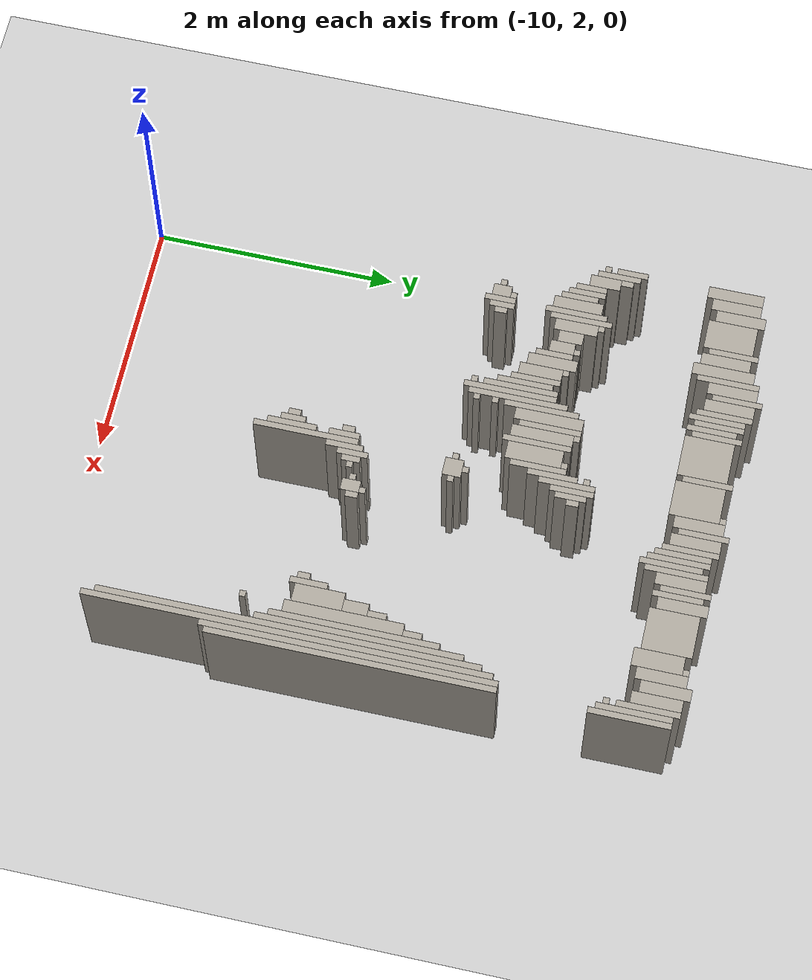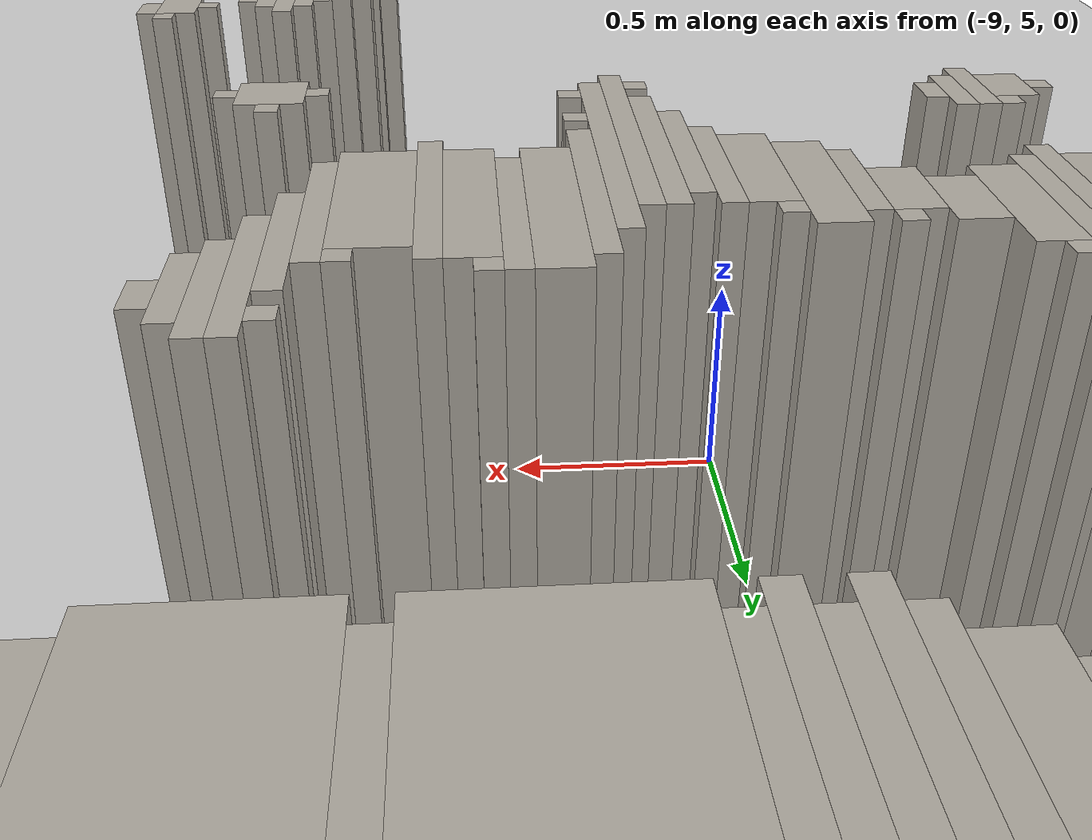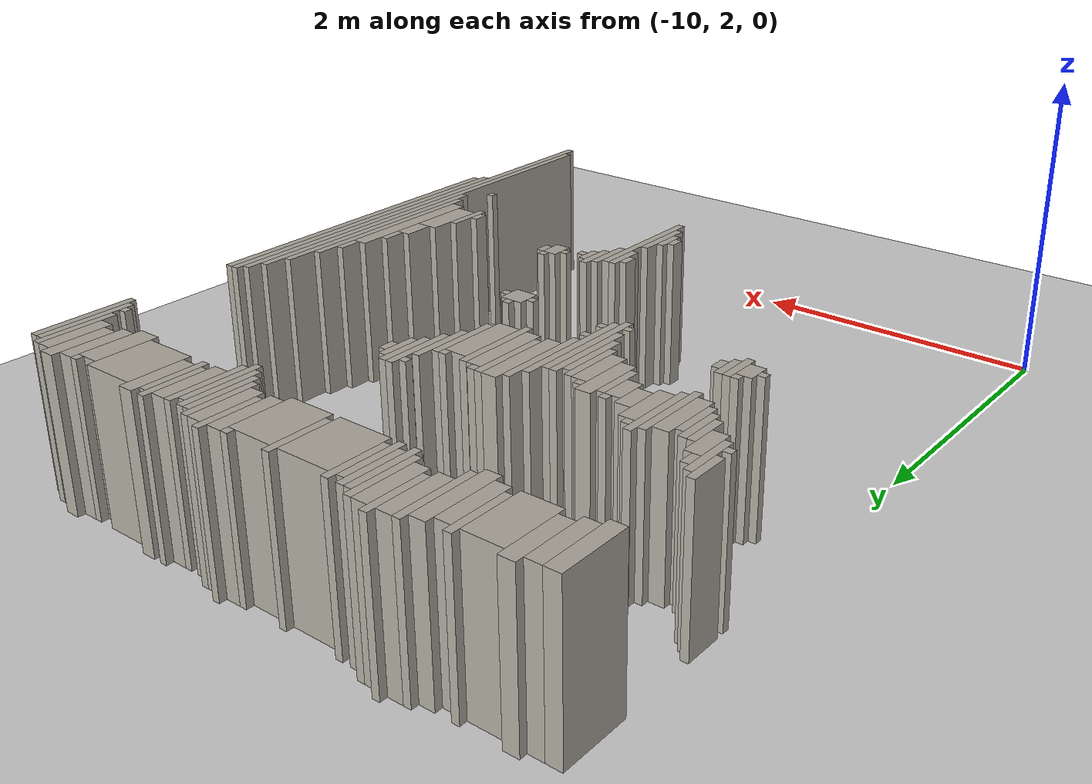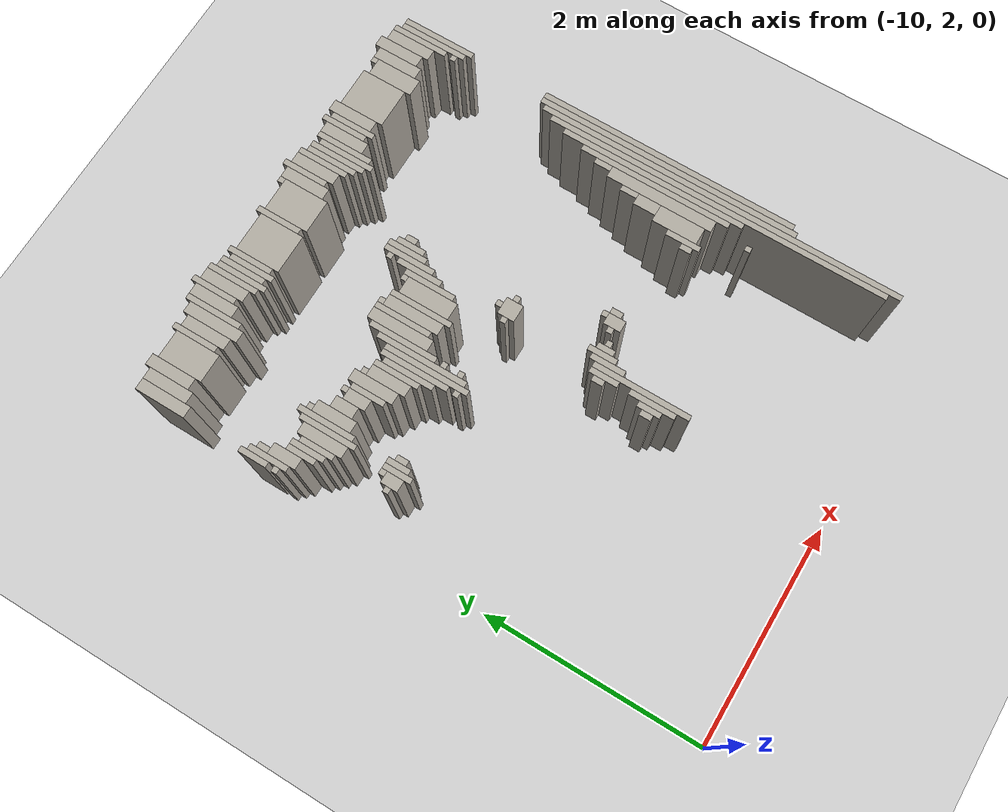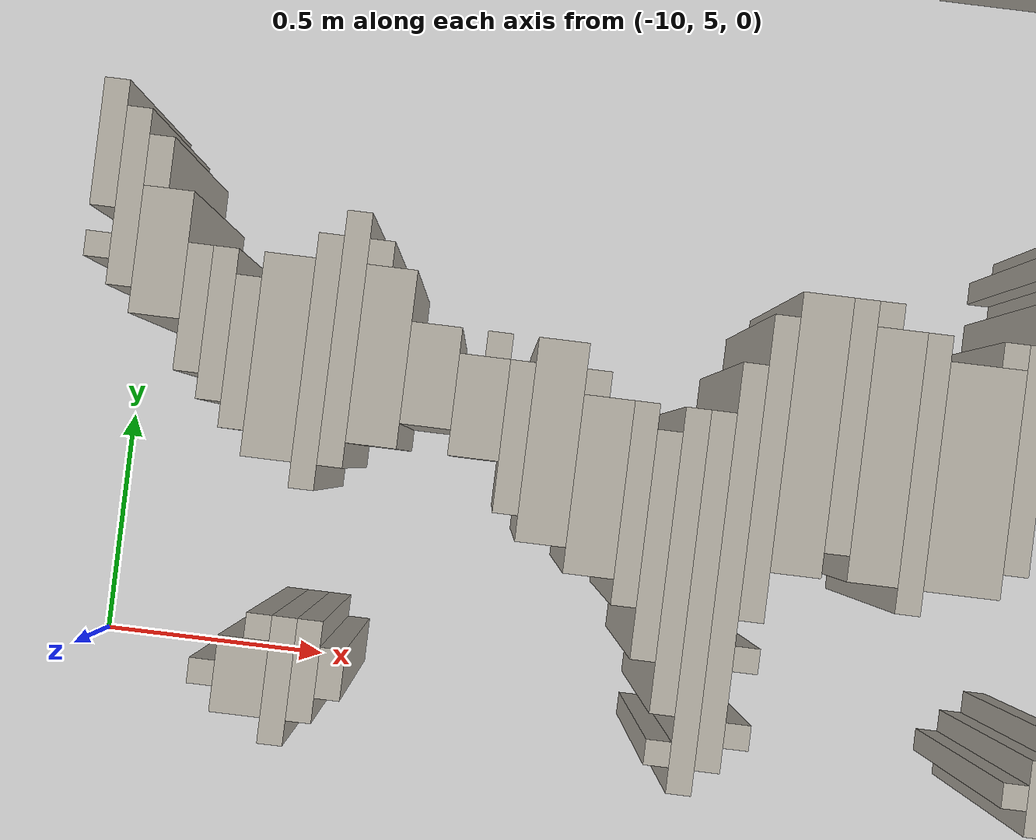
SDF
<sdf version="1.6">
 <world name="fr079_office">
  <include><uri>model://sun</uri></include>
  <include><uri>model://ground_plane</uri></include>
  <model name="fr079_office_walls">
   <static>true</static>
   <link name="w2254">
    <pose>-6.323 4.019 0.500 0 0 0</pose>
    <collision name="c"><geometry><box><size>0.050 3.250 1.000</size></box></geometry></collision>
    <visual name="v">
     <geometry><box><size>0.050 3.250 1.000</size></box></geometry>
     <material><ambient>0.68 0.66 0.62 1</ambient><diffuse>0.68 0.66 0.62 1</diffuse></material>
    </visual>
   </link>
   <link name="w2277">
    <pose>-6.373 4.019 0.500 0 0 0</pose>
    <collision name="c"><geometry><box><size>0.050 3.050 1.000</size></box></geometry></collision>
    <visual name="v">
     <geometry><box><size>0.050 3.050 1.000</size></box></geometry>
     <material><ambient>0.68 0.66 0.62 1</ambient><diffuse>0.68 0.66 0.62 1</diffuse></material>
    </visual>
   </link>
   <link name="w2494">
    <pose>-8.023 3.769 0.500 0 0 0</pose>
    <collision name="c"><geometry><box><size>0.050 0.850 1.000</size></box></geometry></collision>
    <visual name="v">
     <geometry><box><size>0.050 0.850 1.000</size></box></geometry>
     <material><ambient>0.68 0.66 0.62 1</ambient><diffuse>0.68 0.66 0.62 1</diffuse></material>
    </visual>
   </link>
   <link name="w2497">
    <pose>-6.273 4.519 0.500 0 0 0</pose>
    <collision name="c"><geometry><box><size>0.050 2.350 1.000</size></box></geometry></collision>
    <visual name="v">
     <geometry><box><size>0.050 2.350 1.000</size></box></geometry>
     <material><ambient>0.68 0.66 0.62 1</ambient><diffuse>0.68 0.66 0.62 1</diffuse></material>
    </visual>
   </link>
   <link name="w2510">
    <pose>-6.223 4.544 0.500 0 0 0</pose>
    <collision name="c"><geometry><box><size>0.050 2.300 1.000</size></box></geometry></collision>
    <visual name="v">
     <geometry><box><size>0.050 2.300 1.000</size></box></geometry>
     <material><ambient>0.68 0.66 0.62 1</ambient><diffuse>0.68 0.66 0.62 1</diffuse></material>
    </visual>
   </link>
   <link name="w2518">
    <pose>-8.073 3.644 0.500 0 0 0</pose>
    <collision name="c"><geometry><box><size>0.050 0.400 1.000</size></box></geometry></collision>
    <visual name="v">
     <geometry><box><size>0.050 0.400 1.000</size></box></geometry>
     <material><ambient>0.68 0.66 0.62 1</ambient><diffuse>0.68 0.66 0.62 1</diffuse></material>
    </visual>
   </link>
   <link name="w2536">
    <pose>-8.123 3.644 0.500 0 0 0</pose>
    <collision name="c"><geometry><box><size>0.050 0.200 1.000</size></box></geometry></collision>
    <visual name="v">
     <geometry><box><size>0.050 0.200 1.000</size></box></geometry>
     <material><ambient>0.68 0.66 0.62 1</ambient><diffuse>0.68 0.66 0.62 1</diffuse></material>
    </visual>
   </link>
   <link name="w2542">
    <pose>-8.173 3.644 0.500 0 0 0</pose>
    <collision name="c"><geometry><box><size>0.050 0.100 1.000</size></box></geometry></collision>
    <visual name="v">
     <geometry><box><size>0.050 0.100 1.000</size></box></geometry>
     <material><ambient>0.68 0.66 0.62 1</ambient><diffuse>0.68 0.66 0.62 1</diffuse></material>
    </visual>
   </link>
   <link name="w2543">
    <pose>-6.573 3.619 0.500 0 0 0</pose>
    <collision name="c"><geometry><box><size>0.050 0.050 1.000</size></box></geometry></collision>
    <visual name="v">
     <geometry><box><size>0.050 0.050 1.000</size></box></geometry>
     <material><ambient>0.68 0.66 0.62 1</ambient><diffuse>0.68 0.66 0.62 1</diffuse></material>
    </visual>
   </link>
   <link name="w2565">
    <pose>-6.423 4.569 0.500 0 0 0</pose>
    <collision name="c"><geometry><box><size>0.050 1.650 1.000</size></box></geometry></collision>
    <visual name="v">
     <geometry><box><size>0.050 1.650 1.000</size></box></geometry>
     <material><ambient>0.68 0.66 0.62 1</ambient><diffuse>0.68 0.66 0.62 1</diffuse></material>
    </visual>
   </link>
   <link name="w2585">
    <pose>-6.473 4.519 0.500 0 0 0</pose>
    <collision name="c"><geometry><box><size>0.050 1.350 1.000</size></box></geometry></collision>
    <visual name="v">
     <geometry><box><size>0.050 1.350 1.000</size></box></geometry>
     <material><ambient>0.68 0.66 0.62 1</ambient><diffuse>0.68 0.66 0.62 1</diffuse></material>
    </visual>
   </link>
   <link name="w2598">
    <pose>-8.073 4.069 0.500 0 0 0</pose>
    <collision name="c"><geometry><box><size>0.050 0.250 1.000</size></box></geometry></collision>
    <visual name="v">
     <geometry><box><size>0.050 0.250 1.000</size></box></geometry>
     <material><ambient>0.68 0.66 0.62 1</ambient><diffuse>0.68 0.66 0.62 1</diffuse></material>
    </visual>
   </link>
   <link name="w2599">
    <pose>-7.973 4.094 0.500 0 0 0</pose>
    <collision name="c"><geometry><box><size>0.050 0.300 1.000</size></box></geometry></collision>
    <visual name="v">
     <geometry><box><size>0.050 0.300 1.000</size></box></geometry>
     <material><ambient>0.68 0.66 0.62 1</ambient><diffuse>0.68 0.66 0.62 1</diffuse></material>
    </visual>
   </link>
   <link name="w2600">
    <pose>-6.773 4.094 0.500 0 0 0</pose>
    <collision name="c"><geometry><box><size>0.050 0.300 1.000</size></box></geometry></collision>
    <visual name="v">
     <geometry><box><size>0.050 0.300 1.000</size></box></geometry>
     <material><ambient>0.68 0.66 0.62 1</ambient><diffuse>0.68 0.66 0.62 1</diffuse></material>
    </visual>
   </link>
   <link name="w2601">
    <pose>-6.548 4.419 0.500 0 0 0</pose>
    <collision name="c"><geometry><box><size>0.100 0.950 1.000</size></box></geometry></collision>
    <visual name="v">
     <geometry><box><size>0.100 0.950 1.000</size></box></geometry>
     <material><ambient>0.68 0.66 0.62 1</ambient><diffuse>0.68 0.66 0.62 1</diffuse></material>
    </visual>
   </link>
   <link name="w2609">
    <pose>-6.823 4.044 0.500 0 0 0</pose>
    <collision name="c"><geometry><box><size>0.050 0.100 1.000</size></box></geometry></collision>
    <visual name="v">
     <geometry><box><size>0.050 0.100 1.000</size></box></geometry>
     <material><ambient>0.68 0.66 0.62 1</ambient><diffuse>0.68 0.66 0.62 1</diffuse></material>
    </visual>
   </link>
   <link name="w2610">
    <pose>-6.673 4.194 0.500 0 0 0</pose>
    <collision name="c"><geometry><box><size>0.150 0.400 1.000</size></box></geometry></collision>
    <visual name="v">
     <geometry><box><size>0.150 0.400 1.000</size></box></geometry>
     <material><ambient>0.68 0.66 0.62 1</ambient><diffuse>0.68 0.66 0.62 1</diffuse></material>
    </visual>
   </link>
   <link name="w2620">
    <pose>-8.123 4.094 0.500 0 0 0</pose>
    <collision name="c"><geometry><box><size>0.050 0.100 1.000</size></box></geometry></collision>
    <visual name="v">
     <geometry><box><size>0.050 0.100 1.000</size></box></geometry>
     <material><ambient>0.68 0.66 0.62 1</ambient><diffuse>0.68 0.66 0.62 1</diffuse></material>
    </visual>
   </link>
   <link name="w2621">
    <pose>-7.923 4.169 0.500 0 0 0</pose>
    <collision name="c"><geometry><box><size>0.050 0.250 1.000</size></box></geometry></collision>
    <visual name="v">
     <geometry><box><size>0.050 0.250 1.000</size></box></geometry>
     <material><ambient>0.68 0.66 0.62 1</ambient><diffuse>0.68 0.66 0.62 1</diffuse></material>
    </visual>
   </link>
   <link name="w2632">
    <pose>-7.873 4.169 0.500 0 0 0</pose>
    <collision name="c"><geometry><box><size>0.050 0.150 1.000</size></box></geometry></collision>
    <visual name="v">
     <geometry><box><size>0.050 0.150 1.000</size></box></geometry>
     <material><ambient>0.68 0.66 0.62 1</ambient><diffuse>0.68 0.66 0.62 1</diffuse></material>
    </visual>
   </link>
   <link name="w2649">
    <pose>-7.823 4.169 0.500 0 0 0</pose>
    <collision name="c"><geometry><box><size>0.050 0.050 1.000</size></box></geometry></collision>
    <visual name="v">
     <geometry><box><size>0.050 0.050 1.000</size></box></geometry>
     <material><ambient>0.68 0.66 0.62 1</ambient><diffuse>0.68 0.66 0.62 1</diffuse></material>
    </visual>
   </link>
   <link name="w2650">
    <pose>-7.648 4.219 0.500 0 0 0</pose>
    <collision name="c"><geometry><box><size>0.100 0.150 1.000</size></box></geometry></collision>
    <visual name="v">
     <geometry><box><size>0.100 0.150 1.000</size></box></geometry>
     <material><ambient>0.68 0.66 0.62 1</ambient><diffuse>0.68 0.66 0.62 1</diffuse></material>
    </visual>
   </link>
   <link name="w2659">
    <pose>-7.723 4.219 0.500 0 0 0</pose>
    <collision name="c"><geometry><box><size>0.050 0.050 1.000</size></box></geometry></collision>
    <visual name="v">
     <geometry><box><size>0.050 0.050 1.000</size></box></geometry>
     <material><ambient>0.68 0.66 0.62 1</ambient><diffuse>0.68 0.66 0.62 1</diffuse></material>
    </visual>
   </link>
   <link name="w2660">
    <pose>-7.573 4.244 0.500 0 0 0</pose>
    <collision name="c"><geometry><box><size>0.050 0.100 1.000</size></box></geometry></collision>
    <visual name="v">
     <geometry><box><size>0.050 0.100 1.000</size></box></geometry>
     <material><ambient>0.68 0.66 0.62 1</ambient><diffuse>0.68 0.66 0.62 1</diffuse></material>
    </visual>
   </link>
   <link name="w2681">
    <pose>-7.623 4.319 0.500 0 0 0</pose>
    <collision name="c"><geometry><box><size>0.050 0.050 1.000</size></box></geometry></collision>
    <visual name="v">
     <geometry><box><size>0.050 0.050 1.000</size></box></geometry>
     <material><ambient>0.68 0.66 0.62 1</ambient><diffuse>0.68 0.66 0.62 1</diffuse></material>
    </visual>
   </link>
   <link name="w2696">
    <pose>-6.648 4.494 0.500 0 0 0</pose>
    <collision name="c"><geometry><box><size>0.100 0.200 1.000</size></box></geometry></collision>
    <visual name="v">
     <geometry><box><size>0.100 0.200 1.000</size></box></geometry>
     <material><ambient>0.68 0.66 0.62 1</ambient><diffuse>0.68 0.66 0.62 1</diffuse></material>
    </visual>
   </link>
   <link name="w2727">
    <pose>-6.623 4.669 0.500 0 0 0</pose>
    <collision name="c"><geometry><box><size>0.050 0.150 1.000</size></box></geometry></collision>
    <visual name="v">
     <geometry><box><size>0.050 0.150 1.000</size></box></geometry>
     <material><ambient>0.68 0.66 0.62 1</ambient><diffuse>0.68 0.66 0.62 1</diffuse></material>
    </visual>
   </link>
   <link name="w2776">
    <pose>-9.523 5.019 0.500 0 0 0</pose>
    <collision name="c"><geometry><box><size>0.050 0.250 1.000</size></box></geometry></collision>
    <visual name="v">
     <geometry><box><size>0.050 0.250 1.000</size></box></geometry>
     <material><ambient>0.68 0.66 0.62 1</ambient><diffuse>0.68 0.66 0.62 1</diffuse></material>
    </visual>
   </link>
   <link name="w2777">
    <pose>-8.723 5.269 0.500 0 0 0</pose>
    <collision name="c"><geometry><box><size>0.050 0.750 1.000</size></box></geometry></collision>
    <visual name="v">
     <geometry><box><size>0.050 0.750 1.000</size></box></geometry>
     <material><ambient>0.68 0.66 0.62 1</ambient><diffuse>0.68 0.66 0.62 1</diffuse></material>
    </visual>
   </link>
   <link name="w2778">
    <pose>-7.973 4.969 0.500 0 0 0</pose>
    <collision name="c"><geometry><box><size>0.150 0.150 1.000</size></box></geometry></collision>
    <visual name="v">
     <geometry><box><size>0.150 0.150 1.000</size></box></geometry>
     <material><ambient>0.68 0.66 0.62 1</ambient><diffuse>0.68 0.66 0.62 1</diffuse></material>
    </visual>
   </link>
   <link name="w2779">
    <pose>-6.523 4.969 0.500 0 0 0</pose>
    <collision name="c"><geometry><box><size>0.050 0.150 1.000</size></box></geometry></collision>
    <visual name="v">
     <geometry><box><size>0.050 0.150 1.000</size></box></geometry>
     <material><ambient>0.68 0.66 0.62 1</ambient><diffuse>0.68 0.66 0.62 1</diffuse></material>
    </visual>
   </link>
   <link name="w2791">
    <pose>-9.598 5.019 0.500 0 0 0</pose>
    <collision name="c"><geometry><box><size>0.100 0.150 1.000</size></box></geometry></collision>
    <visual name="v">
     <geometry><box><size>0.100 0.150 1.000</size></box></geometry>
     <material><ambient>0.68 0.66 0.62 1</ambient><diffuse>0.68 0.66 0.62 1</diffuse></material>
    </visual>
   </link>
   <link name="w2792">
    <pose>-9.473 5.044 0.500 0 0 0</pose>
    <collision name="c"><geometry><box><size>0.050 0.200 1.000</size></box></geometry></collision>
    <visual name="v">
     <geometry><box><size>0.050 0.200 1.000</size></box></geometry>
     <material><ambient>0.68 0.66 0.62 1</ambient><diffuse>0.68 0.66 0.62 1</diffuse></material>
    </visual>
   </link>
   <link name="w2793">
    <pose>-8.773 4.969 0.500 0 0 0</pose>
    <collision name="c"><geometry><box><size>0.050 0.050 1.000</size></box></geometry></collision>
    <visual name="v">
     <geometry><box><size>0.050 0.050 1.000</size></box></geometry>
     <material><ambient>0.68 0.66 0.62 1</ambient><diffuse>0.68 0.66 0.62 1</diffuse></material>
    </visual>
   </link>
   <link name="w2794">
    <pose>-8.673 5.344 0.500 0 0 0</pose>
    <collision name="c"><geometry><box><size>0.050 0.800 1.000</size></box></geometry></collision>
    <visual name="v">
     <geometry><box><size>0.050 0.800 1.000</size></box></geometry>
     <material><ambient>0.68 0.66 0.62 1</ambient><diffuse>0.68 0.66 0.62 1</diffuse></material>
    </visual>
   </link>
   <link name="w2795">
    <pose>-8.073 4.969 0.500 0 0 0</pose>
    <collision name="c"><geometry><box><size>0.050 0.050 1.000</size></box></geometry></collision>
    <visual name="v">
     <geometry><box><size>0.050 0.050 1.000</size></box></geometry>
     <material><ambient>0.68 0.66 0.62 1</ambient><diffuse>0.68 0.66 0.62 1</diffuse></material>
    </visual>
   </link>
   <link name="w2796">
    <pose>-7.873 4.969 0.500 0 0 0</pose>
    <collision name="c"><geometry><box><size>0.050 0.050 1.000</size></box></geometry></collision>
    <visual name="v">
     <geometry><box><size>0.050 0.050 1.000</size></box></geometry>
     <material><ambient>0.68 0.66 0.62 1</ambient><diffuse>0.68 0.66 0.62 1</diffuse></material>
    </visual>
   </link>
   <link name="w2803">
    <pose>-9.673 5.019 0.500 0 0 0</pose>
    <collision name="c"><geometry><box><size>0.050 0.050 1.000</size></box></geometry></collision>
    <visual name="v">
     <geometry><box><size>0.050 0.050 1.000</size></box></geometry>
     <material><ambient>0.68 0.66 0.62 1</ambient><diffuse>0.68 0.66 0.62 1</diffuse></material>
    </visual>
   </link>
   <link name="w2804">
    <pose>-9.423 5.044 0.500 0 0 0</pose>
    <collision name="c"><geometry><box><size>0.050 0.100 1.000</size></box></geometry></collision>
    <visual name="v">
     <geometry><box><size>0.050 0.100 1.000</size></box></geometry>
     <material><ambient>0.68 0.66 0.62 1</ambient><diffuse>0.68 0.66 0.62 1</diffuse></material>
    </visual>
   </link>
   <link name="w2805">
    <pose>-8.623 5.019 0.500 0 0 0</pose>
    <collision name="c"><geometry><box><size>0.050 0.050 1.000</size></box></geometry></collision>
    <visual name="v">
     <geometry><box><size>0.050 0.050 1.000</size></box></geometry>
     <material><ambient>0.68 0.66 0.62 1</ambient><diffuse>0.68 0.66 0.62 1</diffuse></material>
    </visual>
   </link>
   <link name="w2818">
    <pose>-8.773 5.344 0.500 0 0 0</pose>
    <collision name="c"><geometry><box><size>0.050 0.600 1.000</size></box></geometry></collision>
    <visual name="v">
     <geometry><box><size>0.050 0.600 1.000</size></box></geometry>
     <material><ambient>0.68 0.66 0.62 1</ambient><diffuse>0.68 0.66 0.62 1</diffuse></material>
    </visual>
   </link>
   <link name="w2819">
    <pose>-7.973 5.069 0.500 0 0 0</pose>
    <collision name="c"><geometry><box><size>0.050 0.050 1.000</size></box></geometry></collision>
    <visual name="v">
     <geometry><box><size>0.050 0.050 1.000</size></box></geometry>
     <material><ambient>0.68 0.66 0.62 1</ambient><diffuse>0.68 0.66 0.62 1</diffuse></material>
    </visual>
   </link>
   <link name="w2825">
    <pose>-9.573 5.119 0.500 0 0 0</pose>
    <collision name="c"><geometry><box><size>0.050 0.050 1.000</size></box></geometry></collision>
    <visual name="v">
     <geometry><box><size>0.050 0.050 1.000</size></box></geometry>
     <material><ambient>0.68 0.66 0.62 1</ambient><diffuse>0.68 0.66 0.62 1</diffuse></material>
    </visual>
   </link>
   <link name="w2834">
    <pose>-8.823 5.369 0.500 0 0 0</pose>
    <collision name="c"><geometry><box><size>0.050 0.450 1.000</size></box></geometry></collision>
    <visual name="v">
     <geometry><box><size>0.050 0.450 1.000</size></box></geometry>
     <material><ambient>0.68 0.66 0.62 1</ambient><diffuse>0.68 0.66 0.62 1</diffuse></material>
    </visual>
   </link>
   <link name="w2835">
    <pose>-8.623 5.169 0.500 0 0 0</pose>
    <collision name="c"><geometry><box><size>0.050 0.050 1.000</size></box></geometry></collision>
    <visual name="v">
     <geometry><box><size>0.050 0.050 1.000</size></box></geometry>
     <material><ambient>0.68 0.66 0.62 1</ambient><diffuse>0.68 0.66 0.62 1</diffuse></material>
    </visual>
   </link>
   <link name="w2854">
    <pose>-8.873 5.444 0.500 0 0 0</pose>
    <collision name="c"><geometry><box><size>0.050 0.400 1.000</size></box></geometry></collision>
    <visual name="v">
     <geometry><box><size>0.050 0.400 1.000</size></box></geometry>
     <material><ambient>0.68 0.66 0.62 1</ambient><diffuse>0.68 0.66 0.62 1</diffuse></material>
    </visual>
   </link>
   <link name="w2855">
    <pose>-8.623 5.544 0.500 0 0 0</pose>
    <collision name="c"><geometry><box><size>0.050 0.600 1.000</size></box></geometry></collision>
    <visual name="v">
     <geometry><box><size>0.050 0.600 1.000</size></box></geometry>
     <material><ambient>0.68 0.66 0.62 1</ambient><diffuse>0.68 0.66 0.62 1</diffuse></material>
    </visual>
   </link>
   <link name="w2867">
    <pose>-8.948 5.469 0.500 0 0 0</pose>
    <collision name="c"><geometry><box><size>0.100 0.350 1.000</size></box></geometry></collision>
    <visual name="v">
     <geometry><box><size>0.100 0.350 1.000</size></box></geometry>
     <material><ambient>0.68 0.66 0.62 1</ambient><diffuse>0.68 0.66 0.62 1</diffuse></material>
    </visual>
   </link>
   <link name="w2868">
    <pose>-8.323 5.569 0.500 0 0 0</pose>
    <collision name="c"><geometry><box><size>0.050 0.550 1.000</size></box></geometry></collision>
    <visual name="v">
     <geometry><box><size>0.050 0.550 1.000</size></box></geometry>
     <material><ambient>0.68 0.66 0.62 1</ambient><diffuse>0.68 0.66 0.62 1</diffuse></material>
    </visual>
   </link>
   <link name="w2881">
    <pose>-9.048 5.544 0.500 0 0 0</pose>
    <collision name="c"><geometry><box><size>0.100 0.400 1.000</size></box></geometry></collision>
    <visual name="v">
     <geometry><box><size>0.100 0.400 1.000</size></box></geometry>
     <material><ambient>0.68 0.66 0.62 1</ambient><diffuse>0.68 0.66 0.62 1</diffuse></material>
    </visual>
   </link>
   <link name="w2882">
    <pose>-8.548 5.619 0.500 0 0 0</pose>
    <collision name="c"><geometry><box><size>0.100 0.550 1.000</size></box></geometry></collision>
    <visual name="v">
     <geometry><box><size>0.100 0.550 1.000</size></box></geometry>
     <material><ambient>0.68 0.66 0.62 1</ambient><diffuse>0.68 0.66 0.62 1</diffuse></material>
    </visual>
   </link>
   <link name="w2883">
    <pose>-8.398 5.594 0.500 0 0 0</pose>
    <collision name="c"><geometry><box><size>0.100 0.500 1.000</size></box></geometry></collision>
    <visual name="v">
     <geometry><box><size>0.100 0.500 1.000</size></box></geometry>
     <material><ambient>0.68 0.66 0.62 1</ambient><diffuse>0.68 0.66 0.62 1</diffuse></material>
    </visual>
   </link>
   <link name="w2884">
    <pose>-8.223 5.569 0.500 0 0 0</pose>
    <collision name="c"><geometry><box><size>0.150 0.450 1.000</size></box></geometry></collision>
    <visual name="v">
     <geometry><box><size>0.150 0.450 1.000</size></box></geometry>
     <material><ambient>0.68 0.66 0.62 1</ambient><diffuse>0.68 0.66 0.62 1</diffuse></material>
    </visual>
   </link>
   <link name="w2895">
    <pose>-9.523 5.644 0.500 0 0 0</pose>
    <collision name="c"><geometry><box><size>0.050 0.500 1.000</size></box></geometry></collision>
    <visual name="v">
     <geometry><box><size>0.050 0.500 1.000</size></box></geometry>
     <material><ambient>0.68 0.66 0.62 1</ambient><diffuse>0.68 0.66 0.62 1</diffuse></material>
    </visual>
   </link>
   <link name="w2896">
    <pose>-9.123 5.544 0.500 0 0 0</pose>
    <collision name="c"><geometry><box><size>0.050 0.300 1.000</size></box></geometry></collision>
    <visual name="v">
     <geometry><box><size>0.050 0.300 1.000</size></box></geometry>
     <material><ambient>0.68 0.66 0.62 1</ambient><diffuse>0.68 0.66 0.62 1</diffuse></material>
    </visual>
   </link>
   <link name="w2897">
    <pose>-8.473 5.644 0.500 0 0 0</pose>
    <collision name="c"><geometry><box><size>0.050 0.500 1.000</size></box></geometry></collision>
    <visual name="v">
     <geometry><box><size>0.050 0.500 1.000</size></box></geometry>
     <material><ambient>0.68 0.66 0.62 1</ambient><diffuse>0.68 0.66 0.62 1</diffuse></material>
    </visual>
   </link>
   <link name="w2898">
    <pose>-8.123 5.619 0.500 0 0 0</pose>
    <collision name="c"><geometry><box><size>0.050 0.450 1.000</size></box></geometry></collision>
    <visual name="v">
     <geometry><box><size>0.050 0.450 1.000</size></box></geometry>
     <material><ambient>0.68 0.66 0.62 1</ambient><diffuse>0.68 0.66 0.62 1</diffuse></material>
    </visual>
   </link>
   <link name="w2904">
    <pose>-9.598 5.644 0.500 0 0 0</pose>
    <collision name="c"><geometry><box><size>0.100 0.400 1.000</size></box></geometry></collision>
    <visual name="v">
     <geometry><box><size>0.100 0.400 1.000</size></box></geometry>
     <material><ambient>0.68 0.66 0.62 1</ambient><diffuse>0.68 0.66 0.62 1</diffuse></material>
    </visual>
   </link>
   <link name="w2905">
    <pose>-9.473 5.694 0.500 0 0 0</pose>
    <collision name="c"><geometry><box><size>0.050 0.500 1.000</size></box></geometry></collision>
    <visual name="v">
     <geometry><box><size>0.050 0.500 1.000</size></box></geometry>
     <material><ambient>0.68 0.66 0.62 1</ambient><diffuse>0.68 0.66 0.62 1</diffuse></material>
    </visual>
   </link>
   <link name="w2916">
    <pose>-9.673 5.644 0.500 0 0 0</pose>
    <collision name="c"><geometry><box><size>0.050 0.300 1.000</size></box></geometry></collision>
    <visual name="v">
     <geometry><box><size>0.050 0.300 1.000</size></box></geometry>
     <material><ambient>0.68 0.66 0.62 1</ambient><diffuse>0.68 0.66 0.62 1</diffuse></material>
    </visual>
   </link>
   <link name="w2917">
    <pose>-9.398 5.669 0.500 0 0 0</pose>
    <collision name="c"><geometry><box><size>0.100 0.350 1.000</size></box></geometry></collision>
    <visual name="v">
     <geometry><box><size>0.100 0.350 1.000</size></box></geometry>
     <material><ambient>0.68 0.66 0.62 1</ambient><diffuse>0.68 0.66 0.62 1</diffuse></material>
    </visual>
   </link>
   <link name="w2918">
    <pose>-9.198 5.594 0.500 0 0 0</pose>
    <collision name="c"><geometry><box><size>0.100 0.200 1.000</size></box></geometry></collision>
    <visual name="v">
     <geometry><box><size>0.100 0.200 1.000</size></box></geometry>
     <material><ambient>0.68 0.66 0.62 1</ambient><diffuse>0.68 0.66 0.62 1</diffuse></material>
    </visual>
   </link>
   <link name="w2929">
    <pose>-9.723 5.694 0.500 0 0 0</pose>
    <collision name="c"><geometry><box><size>0.050 0.300 1.000</size></box></geometry></collision>
    <visual name="v">
     <geometry><box><size>0.050 0.300 1.000</size></box></geometry>
     <material><ambient>0.68 0.66 0.62 1</ambient><diffuse>0.68 0.66 0.62 1</diffuse></material>
    </visual>
   </link>
   <link name="w2930">
    <pose>-9.298 5.644 0.500 0 0 0</pose>
    <collision name="c"><geometry><box><size>0.100 0.200 1.000</size></box></geometry></collision>
    <visual name="v">
     <geometry><box><size>0.100 0.200 1.000</size></box></geometry>
     <material><ambient>0.68 0.66 0.62 1</ambient><diffuse>0.68 0.66 0.62 1</diffuse></material>
    </visual>
   </link>
   <link name="w2931">
    <pose>-8.073 5.744 0.500 0 0 0</pose>
    <collision name="c"><geometry><box><size>0.050 0.400 1.000</size></box></geometry></collision>
    <visual name="v">
     <geometry><box><size>0.050 0.400 1.000</size></box></geometry>
     <material><ambient>0.68 0.66 0.62 1</ambient><diffuse>0.68 0.66 0.62 1</diffuse></material>
    </visual>
   </link>
   <link name="w2941">
    <pose>-9.773 5.719 0.500 0 0 0</pose>
    <collision name="c"><geometry><box><size>0.050 0.250 1.000</size></box></geometry></collision>
    <visual name="v">
     <geometry><box><size>0.050 0.250 1.000</size></box></geometry>
     <material><ambient>0.68 0.66 0.62 1</ambient><diffuse>0.68 0.66 0.62 1</diffuse></material>
    </visual>
   </link>
   <link name="w2958">
    <pose>-8.973 5.669 0.500 0 0 0</pose>
    <collision name="c"><geometry><box><size>0.050 0.050 1.000</size></box></geometry></collision>
    <visual name="v">
     <geometry><box><size>0.050 0.050 1.000</size></box></geometry>
     <material><ambient>0.68 0.66 0.62 1</ambient><diffuse>0.68 0.66 0.62 1</diffuse></material>
    </visual>
   </link>
   <link name="w2959">
    <pose>-8.023 5.869 0.500 0 0 0</pose>
    <collision name="c"><geometry><box><size>0.050 0.450 1.000</size></box></geometry></collision>
    <visual name="v">
     <geometry><box><size>0.050 0.450 1.000</size></box></geometry>
     <material><ambient>0.68 0.66 0.62 1</ambient><diffuse>0.68 0.66 0.62 1</diffuse></material>
    </visual>
   </link>
   <link name="w2971">
    <pose>-9.848 5.819 0.500 0 0 0</pose>
    <collision name="c"><geometry><box><size>0.100 0.250 1.000</size></box></geometry></collision>
    <visual name="v">
     <geometry><box><size>0.100 0.250 1.000</size></box></geometry>
     <material><ambient>0.68 0.66 0.62 1</ambient><diffuse>0.68 0.66 0.62 1</diffuse></material>
    </visual>
   </link>
   <link name="w2972">
    <pose>-9.173 5.719 0.500 0 0 0</pose>
    <collision name="c"><geometry><box><size>0.050 0.050 1.000</size></box></geometry></collision>
    <visual name="v">
     <geometry><box><size>0.050 0.050 1.000</size></box></geometry>
     <material><ambient>0.68 0.66 0.62 1</ambient><diffuse>0.68 0.66 0.62 1</diffuse></material>
    </visual>
   </link>
   <link name="w2978">
    <pose>-9.923 5.919 0.500 0 0 0</pose>
    <collision name="c"><geometry><box><size>0.050 0.350 1.000</size></box></geometry></collision>
    <visual name="v">
     <geometry><box><size>0.050 0.350 1.000</size></box></geometry>
     <material><ambient>0.68 0.66 0.62 1</ambient><diffuse>0.68 0.66 0.62 1</diffuse></material>
    </visual>
   </link>
   <link name="w2979">
    <pose>-7.973 5.919 0.500 0 0 0</pose>
    <collision name="c"><geometry><box><size>0.050 0.350 1.000</size></box></geometry></collision>
    <visual name="v">
     <geometry><box><size>0.050 0.350 1.000</size></box></geometry>
     <material><ambient>0.68 0.66 0.62 1</ambient><diffuse>0.68 0.66 0.62 1</diffuse></material>
    </visual>
   </link>
   <link name="w2988">
    <pose>-9.973 5.819 0.500 0 0 0</pose>
    <collision name="c"><geometry><box><size>0.050 0.050 1.000</size></box></geometry></collision>
    <visual name="v">
     <geometry><box><size>0.050 0.050 1.000</size></box></geometry>
     <material><ambient>0.68 0.66 0.62 1</ambient><diffuse>0.68 0.66 0.62 1</diffuse></material>
    </visual>
   </link>
   <link name="w2989">
    <pose>-8.173 5.819 0.500 0 0 0</pose>
    <collision name="c"><geometry><box><size>0.050 0.050 1.000</size></box></geometry></collision>
    <visual name="v">
     <geometry><box><size>0.050 0.050 1.000</size></box></geometry>
     <material><ambient>0.68 0.66 0.62 1</ambient><diffuse>0.68 0.66 0.62 1</diffuse></material>
    </visual>
   </link>
   <link name="w2990">
    <pose>-7.923 5.919 0.500 0 0 0</pose>
    <collision name="c"><geometry><box><size>0.050 0.250 1.000</size></box></geometry></collision>
    <visual name="v">
     <geometry><box><size>0.050 0.250 1.000</size></box></geometry>
     <material><ambient>0.68 0.66 0.62 1</ambient><diffuse>0.68 0.66 0.62 1</diffuse></material>
    </visual>
   </link>
   <link name="w2997">
    <pose>-9.423 5.869 0.500 0 0 0</pose>
    <collision name="c"><geometry><box><size>0.050 0.050 1.000</size></box></geometry></collision>
    <visual name="v">
     <geometry><box><size>0.050 0.050 1.000</size></box></geometry>
     <material><ambient>0.68 0.66 0.62 1</ambient><diffuse>0.68 0.66 0.62 1</diffuse></material>
    </visual>
   </link>
   <link name="w2998">
    <pose>-8.423 5.869 0.500 0 0 0</pose>
    <collision name="c"><geometry><box><size>0.050 0.050 1.000</size></box></geometry></collision>
    <visual name="v">
     <geometry><box><size>0.050 0.050 1.000</size></box></geometry>
     <material><ambient>0.68 0.66 0.62 1</ambient><diffuse>0.68 0.66 0.62 1</diffuse></material>
    </visual>
   </link>
   <link name="w3004">
    <pose>-9.973 6.019 0.500 0 0 0</pose>
    <collision name="c"><geometry><box><size>0.050 0.250 1.000</size></box></geometry></collision>
    <visual name="v">
     <geometry><box><size>0.050 0.250 1.000</size></box></geometry>
     <material><ambient>0.68 0.66 0.62 1</ambient><diffuse>0.68 0.66 0.62 1</diffuse></material>
    </visual>
   </link>
   <link name="w3005">
    <pose>-7.873 5.944 0.500 0 0 0</pose>
    <collision name="c"><geometry><box><size>0.050 0.100 1.000</size></box></geometry></collision>
    <visual name="v">
     <geometry><box><size>0.050 0.100 1.000</size></box></geometry>
     <material><ambient>0.68 0.66 0.62 1</ambient><diffuse>0.68 0.66 0.62 1</diffuse></material>
    </visual>
   </link>
   <link name="w3015">
    <pose>-9.873 5.994 0.500 0 0 0</pose>
    <collision name="c"><geometry><box><size>0.050 0.100 1.000</size></box></geometry></collision>
    <visual name="v">
     <geometry><box><size>0.050 0.100 1.000</size></box></geometry>
     <material><ambient>0.68 0.66 0.62 1</ambient><diffuse>0.68 0.66 0.62 1</diffuse></material>
    </visual>
   </link>
   <link name="w3022">
    <pose>-8.073 6.019 0.500 0 0 0</pose>
    <collision name="c"><geometry><box><size>0.050 0.050 1.000</size></box></geometry></collision>
    <visual name="v">
     <geometry><box><size>0.050 0.050 1.000</size></box></geometry>
     <material><ambient>0.68 0.66 0.62 1</ambient><diffuse>0.68 0.66 0.62 1</diffuse></material>
    </visual>
   </link>
   <link name="w3109">
    <pose>-6.223 6.719 0.500 0 0 0</pose>
    <collision name="c"><geometry><box><size>0.050 0.650 1.000</size></box></geometry></collision>
    <visual name="v">
     <geometry><box><size>0.050 0.650 1.000</size></box></geometry>
     <material><ambient>0.68 0.66 0.62 1</ambient><diffuse>0.68 0.66 0.62 1</diffuse></material>
    </visual>
   </link>
   <link name="w3121">
    <pose>-6.273 6.744 0.500 0 0 0</pose>
    <collision name="c"><geometry><box><size>0.050 0.600 1.000</size></box></geometry></collision>
    <visual name="v">
     <geometry><box><size>0.050 0.600 1.000</size></box></geometry>
     <material><ambient>0.68 0.66 0.62 1</ambient><diffuse>0.68 0.66 0.62 1</diffuse></material>
    </visual>
   </link>
   <link name="w3140">
    <pose>-6.323 6.519 0.500 0 0 0</pose>
    <collision name="c"><geometry><box><size>0.050 0.050 1.000</size></box></geometry></collision>
    <visual name="v">
     <geometry><box><size>0.050 0.050 1.000</size></box></geometry>
     <material><ambient>0.68 0.66 0.62 1</ambient><diffuse>0.68 0.66 0.62 1</diffuse></material>
    </visual>
   </link>
   <link name="w3155">
    <pose>-7.523 6.794 0.500 0 0 0</pose>
    <collision name="c"><geometry><box><size>0.050 0.500 1.000</size></box></geometry></collision>
    <visual name="v">
     <geometry><box><size>0.050 0.500 1.000</size></box></geometry>
     <material><ambient>0.68 0.66 0.62 1</ambient><diffuse>0.68 0.66 0.62 1</diffuse></material>
    </visual>
   </link>
   <link name="w3176">
    <pose>-7.573 6.844 0.500 0 0 0</pose>
    <collision name="c"><geometry><box><size>0.050 0.500 1.000</size></box></geometry></collision>
    <visual name="v">
     <geometry><box><size>0.050 0.500 1.000</size></box></geometry>
     <material><ambient>0.68 0.66 0.62 1</ambient><diffuse>0.68 0.66 0.62 1</diffuse></material>
    </visual>
   </link>
   <link name="w3177">
    <pose>-7.473 6.844 0.500 0 0 0</pose>
    <collision name="c"><geometry><box><size>0.050 0.500 1.000</size></box></geometry></collision>
    <visual name="v">
     <geometry><box><size>0.050 0.500 1.000</size></box></geometry>
     <material><ambient>0.68 0.66 0.62 1</ambient><diffuse>0.68 0.66 0.62 1</diffuse></material>
    </visual>
   </link>
   <link name="w3178">
    <pose>-6.323 6.844 0.500 0 0 0</pose>
    <collision name="c"><geometry><box><size>0.050 0.500 1.000</size></box></geometry></collision>
    <visual name="v">
     <geometry><box><size>0.050 0.500 1.000</size></box></geometry>
     <material><ambient>0.68 0.66 0.62 1</ambient><diffuse>0.68 0.66 0.62 1</diffuse></material>
    </visual>
   </link>
   <link name="w3202">
    <pose>-9.948 6.869 0.500 0 0 0</pose>
    <collision name="c"><geometry><box><size>0.100 0.450 1.000</size></box></geometry></collision>
    <visual name="v">
     <geometry><box><size>0.100 0.450 1.000</size></box></geometry>
     <material><ambient>0.68 0.66 0.62 1</ambient><diffuse>0.68 0.66 0.62 1</diffuse></material>
    </visual>
   </link>
   <link name="w3203">
    <pose>-9.248 6.894 0.500 0 0 0</pose>
    <collision name="c"><geometry><box><size>0.100 0.500 1.000</size></box></geometry></collision>
    <visual name="v">
     <geometry><box><size>0.100 0.500 1.000</size></box></geometry>
     <material><ambient>0.68 0.66 0.62 1</ambient><diffuse>0.68 0.66 0.62 1</diffuse></material>
    </visual>
   </link>
   <link name="w3204">
    <pose>-7.623 6.869 0.500 0 0 0</pose>
    <collision name="c"><geometry><box><size>0.050 0.450 1.000</size></box></geometry></collision>
    <visual name="v">
     <geometry><box><size>0.050 0.450 1.000</size></box></geometry>
     <material><ambient>0.68 0.66 0.62 1</ambient><diffuse>0.68 0.66 0.62 1</diffuse></material>
    </visual>
   </link>
   <link name="w3205">
    <pose>-6.723 6.844 0.500 0 0 0</pose>
    <collision name="c"><geometry><box><size>0.150 0.400 1.000</size></box></geometry></collision>
    <visual name="v">
     <geometry><box><size>0.150 0.400 1.000</size></box></geometry>
     <material><ambient>0.68 0.66 0.62 1</ambient><diffuse>0.68 0.66 0.62 1</diffuse></material>
    </visual>
   </link>
   <link name="w3237">
    <pose>-9.848 6.894 0.500 0 0 0</pose>
    <collision name="c"><geometry><box><size>0.100 0.400 1.000</size></box></geometry></collision>
    <visual name="v">
     <geometry><box><size>0.100 0.400 1.000</size></box></geometry>
     <material><ambient>0.68 0.66 0.62 1</ambient><diffuse>0.68 0.66 0.62 1</diffuse></material>
    </visual>
   </link>
   <link name="w3238">
    <pose>-9.573 6.894 0.500 0 0 0</pose>
    <collision name="c"><geometry><box><size>0.250 0.400 1.000</size></box></geometry></collision>
    <visual name="v">
     <geometry><box><size>0.250 0.400 1.000</size></box></geometry>
     <material><ambient>0.68 0.66 0.62 1</ambient><diffuse>0.68 0.66 0.62 1</diffuse></material>
    </visual>
   </link>
   <link name="w3239">
    <pose>-9.348 6.894 0.500 0 0 0</pose>
    <collision name="c"><geometry><box><size>0.100 0.400 1.000</size></box></geometry></collision>
    <visual name="v">
     <geometry><box><size>0.100 0.400 1.000</size></box></geometry>
     <material><ambient>0.68 0.66 0.62 1</ambient><diffuse>0.68 0.66 0.62 1</diffuse></material>
    </visual>
   </link>
   <link name="w3240">
    <pose>-9.173 6.944 0.500 0 0 0</pose>
    <collision name="c"><geometry><box><size>0.050 0.500 1.000</size></box></geometry></collision>
    <visual name="v">
     <geometry><box><size>0.050 0.500 1.000</size></box></geometry>
     <material><ambient>0.68 0.66 0.62 1</ambient><diffuse>0.68 0.66 0.62 1</diffuse></material>
    </visual>
   </link>
   <link name="w3241">
    <pose>-8.823 6.919 0.500 0 0 0</pose>
    <collision name="c"><geometry><box><size>0.050 0.450 1.000</size></box></geometry></collision>
    <visual name="v">
     <geometry><box><size>0.050 0.450 1.000</size></box></geometry>
     <material><ambient>0.68 0.66 0.62 1</ambient><diffuse>0.68 0.66 0.62 1</diffuse></material>
    </visual>
   </link>
   <link name="w3242">
    <pose>-8.723 6.894 0.500 0 0 0</pose>
    <collision name="c"><geometry><box><size>0.050 0.400 1.000</size></box></geometry></collision>
    <visual name="v">
     <geometry><box><size>0.050 0.400 1.000</size></box></geometry>
     <material><ambient>0.68 0.66 0.62 1</ambient><diffuse>0.68 0.66 0.62 1</diffuse></material>
    </visual>
   </link>
   <link name="w3243">
    <pose>-8.473 6.894 0.500 0 0 0</pose>
    <collision name="c"><geometry><box><size>0.350 0.400 1.000</size></box></geometry></collision>
    <visual name="v">
     <geometry><box><size>0.350 0.400 1.000</size></box></geometry>
     <material><ambient>0.68 0.66 0.62 1</ambient><diffuse>0.68 0.66 0.62 1</diffuse></material>
    </visual>
   </link>
   <link name="w3244">
    <pose>-8.098 6.894 0.500 0 0 0</pose>
    <collision name="c"><geometry><box><size>0.300 0.400 1.000</size></box></geometry></collision>
    <visual name="v">
     <geometry><box><size>0.300 0.400 1.000</size></box></geometry>
     <material><ambient>0.68 0.66 0.62 1</ambient><diffuse>0.68 0.66 0.62 1</diffuse></material>
    </visual>
   </link>
   <link name="w3245">
    <pose>-7.673 6.919 0.500 0 0 0</pose>
    <collision name="c"><geometry><box><size>0.050 0.450 1.000</size></box></geometry></collision>
    <visual name="v">
     <geometry><box><size>0.050 0.450 1.000</size></box></geometry>
     <material><ambient>0.68 0.66 0.62 1</ambient><diffuse>0.68 0.66 0.62 1</diffuse></material>
    </visual>
   </link>
   <link name="w3246">
    <pose>-7.398 6.894 0.500 0 0 0</pose>
    <collision name="c"><geometry><box><size>0.100 0.400 1.000</size></box></geometry></collision>
    <visual name="v">
     <geometry><box><size>0.100 0.400 1.000</size></box></geometry>
     <material><ambient>0.68 0.66 0.62 1</ambient><diffuse>0.68 0.66 0.62 1</diffuse></material>
    </visual>
   </link>
   <link name="w3247">
    <pose>-7.273 6.894 0.500 0 0 0</pose>
    <collision name="c"><geometry><box><size>0.050 0.400 1.000</size></box></geometry></collision>
    <visual name="v">
     <geometry><box><size>0.050 0.400 1.000</size></box></geometry>
     <material><ambient>0.68 0.66 0.62 1</ambient><diffuse>0.68 0.66 0.62 1</diffuse></material>
    </visual>
   </link>
   <link name="w3248">
    <pose>-6.973 6.894 0.500 0 0 0</pose>
    <collision name="c"><geometry><box><size>0.350 0.400 1.000</size></box></geometry></collision>
    <visual name="v">
     <geometry><box><size>0.350 0.400 1.000</size></box></geometry>
     <material><ambient>0.68 0.66 0.62 1</ambient><diffuse>0.68 0.66 0.62 1</diffuse></material>
    </visual>
   </link>
   <link name="w3249">
    <pose>-6.598 6.894 0.500 0 0 0</pose>
    <collision name="c"><geometry><box><size>0.100 0.400 1.000</size></box></geometry></collision>
    <visual name="v">
     <geometry><box><size>0.100 0.400 1.000</size></box></geometry>
     <material><ambient>0.68 0.66 0.62 1</ambient><diffuse>0.68 0.66 0.62 1</diffuse></material>
    </visual>
   </link>
   <link name="w3250">
    <pose>-6.398 6.894 0.500 0 0 0</pose>
    <collision name="c"><geometry><box><size>0.100 0.400 1.000</size></box></geometry></collision>
    <visual name="v">
     <geometry><box><size>0.100 0.400 1.000</size></box></geometry>
     <material><ambient>0.68 0.66 0.62 1</ambient><diffuse>0.68 0.66 0.62 1</diffuse></material>
    </visual>
   </link>
   <link name="w3270">
    <pose>-9.748 6.944 0.500 0 0 0</pose>
    <collision name="c"><geometry><box><size>0.100 0.400 1.000</size></box></geometry></collision>
    <visual name="v">
     <geometry><box><size>0.100 0.400 1.000</size></box></geometry>
     <material><ambient>0.68 0.66 0.62 1</ambient><diffuse>0.68 0.66 0.62 1</diffuse></material>
    </visual>
   </link>
   <link name="w3271">
    <pose>-9.423 6.944 0.500 0 0 0</pose>
    <collision name="c"><geometry><box><size>0.050 0.400 1.000</size></box></geometry></collision>
    <visual name="v">
     <geometry><box><size>0.050 0.400 1.000</size></box></geometry>
     <material><ambient>0.68 0.66 0.62 1</ambient><diffuse>0.68 0.66 0.62 1</diffuse></material>
    </visual>
   </link>
   <link name="w3272">
    <pose>-8.873 6.969 0.500 0 0 0</pose>
    <collision name="c"><geometry><box><size>0.050 0.450 1.000</size></box></geometry></collision>
    <visual name="v">
     <geometry><box><size>0.050 0.450 1.000</size></box></geometry>
     <material><ambient>0.68 0.66 0.62 1</ambient><diffuse>0.68 0.66 0.62 1</diffuse></material>
    </visual>
   </link>
   <link name="w3273">
    <pose>-8.773 6.944 0.500 0 0 0</pose>
    <collision name="c"><geometry><box><size>0.050 0.400 1.000</size></box></geometry></collision>
    <visual name="v">
     <geometry><box><size>0.050 0.400 1.000</size></box></geometry>
     <material><ambient>0.68 0.66 0.62 1</ambient><diffuse>0.68 0.66 0.62 1</diffuse></material>
    </visual>
   </link>
   <link name="w3274">
    <pose>-8.673 6.944 0.500 0 0 0</pose>
    <collision name="c"><geometry><box><size>0.050 0.400 1.000</size></box></geometry></collision>
    <visual name="v">
     <geometry><box><size>0.050 0.400 1.000</size></box></geometry>
     <material><ambient>0.68 0.66 0.62 1</ambient><diffuse>0.68 0.66 0.62 1</diffuse></material>
    </visual>
   </link>
   <link name="w3275">
    <pose>-8.273 6.944 0.500 0 0 0</pose>
    <collision name="c"><geometry><box><size>0.050 0.400 1.000</size></box></geometry></collision>
    <visual name="v">
     <geometry><box><size>0.050 0.400 1.000</size></box></geometry>
     <material><ambient>0.68 0.66 0.62 1</ambient><diffuse>0.68 0.66 0.62 1</diffuse></material>
    </visual>
   </link>
   <link name="w3276">
    <pose>-7.898 6.944 0.500 0 0 0</pose>
    <collision name="c"><geometry><box><size>0.100 0.400 1.000</size></box></geometry></collision>
    <visual name="v">
     <geometry><box><size>0.100 0.400 1.000</size></box></geometry>
     <material><ambient>0.68 0.66 0.62 1</ambient><diffuse>0.68 0.66 0.62 1</diffuse></material>
    </visual>
   </link>
   <link name="w3277">
    <pose>-7.748 6.944 0.500 0 0 0</pose>
    <collision name="c"><geometry><box><size>0.100 0.400 1.000</size></box></geometry></collision>
    <visual name="v">
     <geometry><box><size>0.100 0.400 1.000</size></box></geometry>
     <material><ambient>0.68 0.66 0.62 1</ambient><diffuse>0.68 0.66 0.62 1</diffuse></material>
    </visual>
   </link>
   <link name="w3278">
    <pose>-7.323 6.944 0.500 0 0 0</pose>
    <collision name="c"><geometry><box><size>0.050 0.400 1.000</size></box></geometry></collision>
    <visual name="v">
     <geometry><box><size>0.050 0.400 1.000</size></box></geometry>
     <material><ambient>0.68 0.66 0.62 1</ambient><diffuse>0.68 0.66 0.62 1</diffuse></material>
    </visual>
   </link>
   <link name="w3279">
    <pose>-7.198 6.944 0.500 0 0 0</pose>
    <collision name="c"><geometry><box><size>0.100 0.400 1.000</size></box></geometry></collision>
    <visual name="v">
     <geometry><box><size>0.100 0.400 1.000</size></box></geometry>
     <material><ambient>0.68 0.66 0.62 1</ambient><diffuse>0.68 0.66 0.62 1</diffuse></material>
    </visual>
   </link>
   <link name="w3280">
    <pose>-6.498 6.944 0.500 0 0 0</pose>
    <collision name="c"><geometry><box><size>0.100 0.400 1.000</size></box></geometry></collision>
    <visual name="v">
     <geometry><box><size>0.100 0.400 1.000</size></box></geometry>
     <material><ambient>0.68 0.66 0.62 1</ambient><diffuse>0.68 0.66 0.62 1</diffuse></material>
    </visual>
   </link>
   <link name="w3286">
    <pose>-9.098 6.994 0.500 0 0 0</pose>
    <collision name="c"><geometry><box><size>0.100 0.400 1.000</size></box></geometry></collision>
    <visual name="v">
     <geometry><box><size>0.100 0.400 1.000</size></box></geometry>
     <material><ambient>0.68 0.66 0.62 1</ambient><diffuse>0.68 0.66 0.62 1</diffuse></material>
    </visual>
   </link>
   <link name="w3287">
    <pose>-8.948 6.994 0.500 0 0 0</pose>
    <collision name="c"><geometry><box><size>0.100 0.400 1.000</size></box></geometry></collision>
    <visual name="v">
     <geometry><box><size>0.100 0.400 1.000</size></box></geometry>
     <material><ambient>0.68 0.66 0.62 1</ambient><diffuse>0.68 0.66 0.62 1</diffuse></material>
    </visual>
   </link>
   <link name="w3288">
    <pose>-7.823 6.994 0.500 0 0 0</pose>
    <collision name="c"><geometry><box><size>0.050 0.400 1.000</size></box></geometry></collision>
    <visual name="v">
     <geometry><box><size>0.050 0.400 1.000</size></box></geometry>
     <material><ambient>0.68 0.66 0.62 1</ambient><diffuse>0.68 0.66 0.62 1</diffuse></material>
    </visual>
   </link>
   <link name="w3292">
    <pose>-9.023 7.044 0.500 0 0 0</pose>
    <collision name="c"><geometry><box><size>0.050 0.400 1.000</size></box></geometry></collision>
    <visual name="v">
     <geometry><box><size>0.050 0.400 1.000</size></box></geometry>
     <material><ambient>0.68 0.66 0.62 1</ambient><diffuse>0.68 0.66 0.62 1</diffuse></material>
    </visual>
   </link>
   <link name="w3309">
    <pose>-6.673 7.069 0.500 0 0 0</pose>
    <collision name="c"><geometry><box><size>0.050 0.050 1.000</size></box></geometry></collision>
    <visual name="v">
     <geometry><box><size>0.050 0.050 1.000</size></box></geometry>
     <material><ambient>0.68 0.66 0.62 1</ambient><diffuse>0.68 0.66 0.62 1</diffuse></material>
    </visual>
   </link>
   <link name="w3313">
    <pose>-7.973 7.119 0.500 0 0 0</pose>
    <collision name="c"><geometry><box><size>0.050 0.050 1.000</size></box></geometry></collision>
    <visual name="v">
     <geometry><box><size>0.050 0.050 1.000</size></box></geometry>
     <material><ambient>0.68 0.66 0.62 1</ambient><diffuse>0.68 0.66 0.62 1</diffuse></material>
    </visual>
   </link>
  </model>
 </world>
</sdf>
